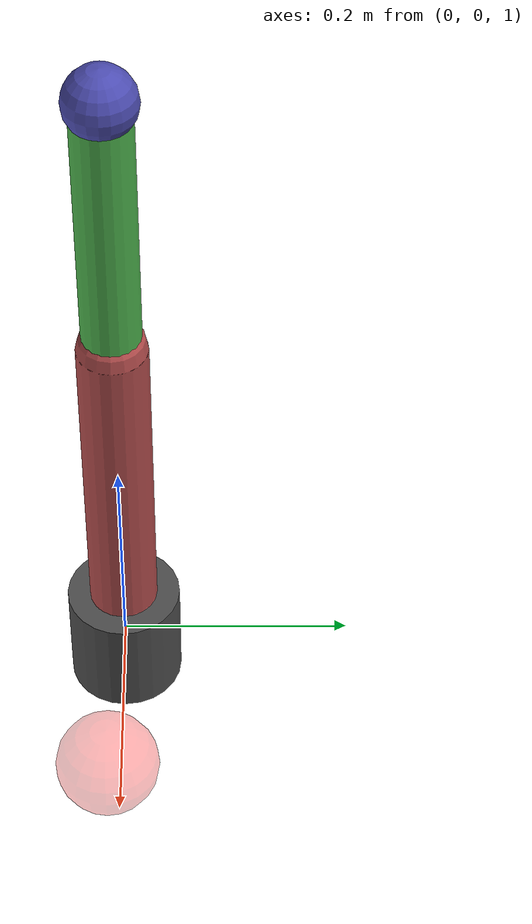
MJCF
<mujoco model="simple_arm">
  <!-- Compiler settings -->
  <compiler angle="radian" coordinate="local" inertiafromgeom="true"/>

  <!-- Simulation options -->
  <option timestep="0.002" iterations="50" solver="Newton" tolerance="1e-10"/>

  <!-- Default settings -->
  <default>
    <joint limited="true" damping="0.5" armature="0.1"/>
    <geom contype="1" conaffinity="1" condim="3" friction="1 0.1 0.1"/>
  </default>

  <!-- Assets (textures, materials) -->
  <asset>
    <texture type="skybox" builtin="gradient" rgb1="0.3 0.5 0.7" rgb2="0 0 0" width="512" height="512"/>
    <texture name="texplane" type="2d" builtin="checker" rgb1="0.2 0.3 0.4" rgb2="0.1 0.15 0.2" width="512" height="512" mark="cross" markrgb="1 1 1"/>
    <material name="matplane" reflectance="0.3" texture="texplane" texrepeat="1 1" texuniform="true"/>
  </asset>

  <!-- World body -->
  <worldbody>
    <!-- Ground plane -->
    <geom name="floor" pos="0 0 0" size="0 0 0.05" type="plane" material="matplane"/>

    <!-- Lighting -->
    <light directional="true" diffuse="0.8 0.8 0.8" specular="0.2 0.2 0.2" pos="0 0 5" dir="0 0 -1"/>
    <light directional="true" diffuse="0.4 0.4 0.4" specular="0.1 0.1 0.1" pos="0 0 4" dir="0 1 -1"/>

    <!-- Base (fixed at origin, representing waist attachment) -->
    <body name="base" pos="0 0 1.0">
      <geom name="base_geom" type="cylinder" size="0.05 0.05" rgba="0.3 0.3 0.3 1"/>

      <!-- Upper arm (first segment) -->
      <body name="upper_arm" pos="0 0 0.05">
        <joint name="shoulder_flex" type="hinge" axis="0 1 0" range="-3.14 3.14"/>
        <geom name="upper_arm_geom" type="capsule" size="0.03" fromto="0 0 0 0 0 0.3" rgba="0.7 0.3 0.3 1"/>

        <!-- Forearm (second segment) -->
        <body name="forearm" pos="0 0 0.3">
          <joint name="elbow_flex" type="hinge" axis="0 1 0" range="-2.5 2.5"/>
          <geom name="forearm_geom" type="capsule" size="0.025" fromto="0 0 0 0 0 0.25" rgba="0.3 0.7 0.3 1"/>

          <!-- End-effector (simple sphere for now) -->
          <body name="end_effector" pos="0 0 0.25">
            <geom name="ee_geom" type="sphere" size="0.03" rgba="0.3 0.3 0.7 1"/>
            <!-- TODO: Add gripper here -->
          </body>
        </body>
      </body>
    </body>

    <!-- Optional: Target sphere for visualization (non-physical) -->
    <body name="target" pos="0.3 0 1.2">
      <geom name="target_geom" type="sphere" size="0.04" rgba="1 0 0 0.3" contype="0" conaffinity="0"/>
    </body>
  </worldbody>

  <!-- Actuators (motors for each joint) -->
  <actuator>
    <motor name="shoulder_motor" joint="shoulder_flex" gear="100" ctrllimited="true" ctrlrange="-1 1"/>
    <motor name="elbow_motor" joint="elbow_flex" gear="100" ctrllimited="true" ctrlrange="-1 1"/>
  </actuator>

  <!-- Sensors -->
  <sensor>
    <!-- Joint positions -->
    <jointpos name="shoulder_pos" joint="shoulder_flex"/>
    <jointpos name="elbow_pos" joint="elbow_flex"/>

    <!-- Joint velocities -->
    <jointvel name="shoulder_vel" joint="shoulder_flex"/>
    <jointvel name="elbow_vel" joint="elbow_flex"/>

    <!-- End-effector position -->
    <framepos name="ee_pos" objtype="body" objname="end_effector"/>
  </sensor>
</mujoco>
